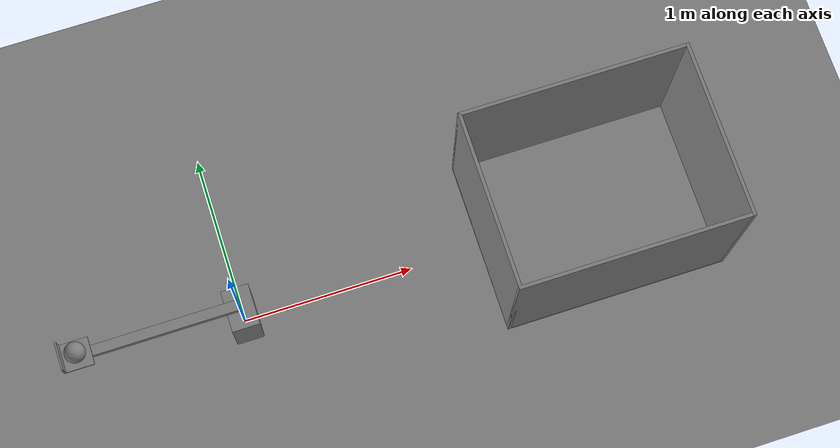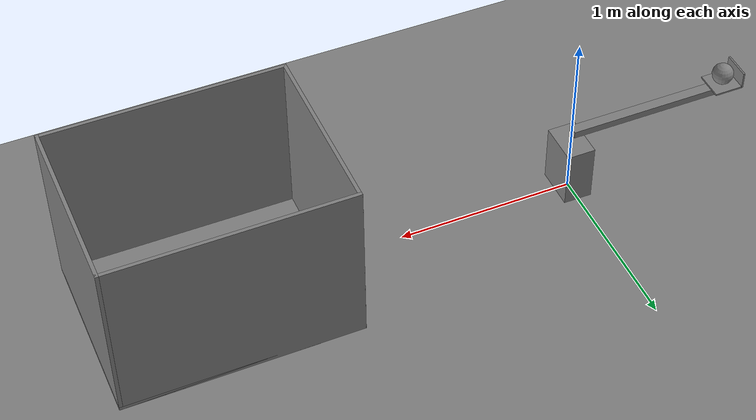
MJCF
<mujoco model="catapult_fixture_corrected">
  <option timestep="0.002"/>
  <worldbody>
    <geom name="floor" type="plane" size="8 8 0.1"/>
    <geom name="catapult_base" type="box" pos="0 0 0.170" size="0.08 0.12 0.170"/>
    <body name="catapult_arm" pos="0 0 0.4">
      <joint name="catapult_hinge" type="hinge" axis="0 1 0" limited="true" range="0 55" stiffness="3.2" springref="150" damping="0.05" armature="0.01"/>
      <geom name="catapult_beam" type="box" pos="-0.500 0 0" size="0.500 0.03 0.02" mass="0.3"/>
      <geom name="catapult_cup_floor" type="box" pos="-0.920 0 0.025" size="0.08 0.08 0.005" mass="0.02"/>
      <geom name="catapult_cup_back" type="box" pos="-1.005 0 0.07" size="0.005 0.08 0.05" mass="0.01"/>
    </body>
    <body name="ball" pos="-0.920 0 0.4895">
      <freejoint/>
      <geom name="ball" type="sphere" size="0.06" mass="0.15" condim="6" friction="0.8 0.01 0.004" solref="0.01 1"/>
    </body>
    <body name="bucket" pos="2.08 0 0.4895">
      <geom name="bucket_base" type="box" pos="0 0 -0.4795" size="0.66 0.51 0.01" friction="1 0.01 0.004" solref="0.01 1"/>
      <geom name="bucket_near" type="box" pos="-0.65 0 0" size="0.01 0.51 0.4895" friction="1 0.01 0.004" solref="0.01 1"/>
      <geom name="bucket_far" type="box" pos="0.65 0 0" size="0.01 0.51 0.4895" friction="1 0.01 0.004" solref="0.01 1"/>
      <geom name="bucket_left" type="box" pos="0 0.5 0" size="0.66 0.01 0.4895" friction="1 0.01 0.004" solref="0.01 1"/>
      <geom name="bucket_right" type="box" pos="0 -0.5 0" size="0.66 0.01 0.4895" friction="1 0.01 0.004" solref="0.01 1"/>
    </body>
  </worldbody>
</mujoco>
